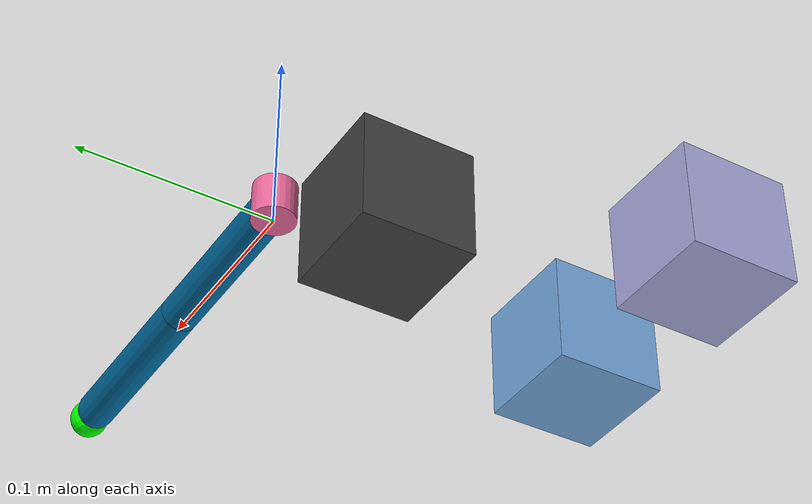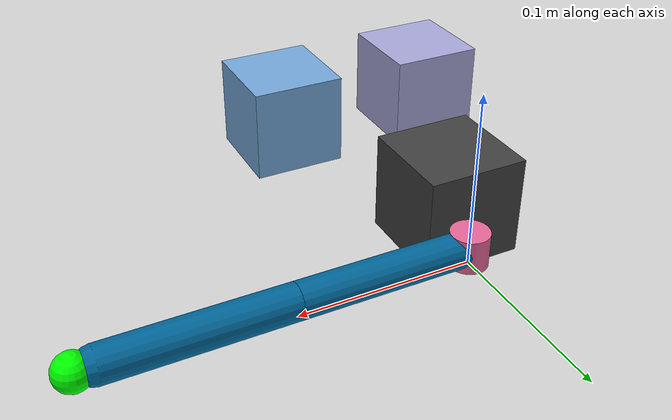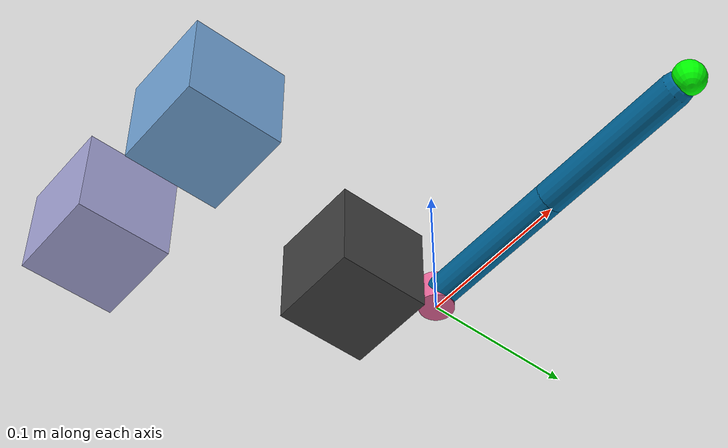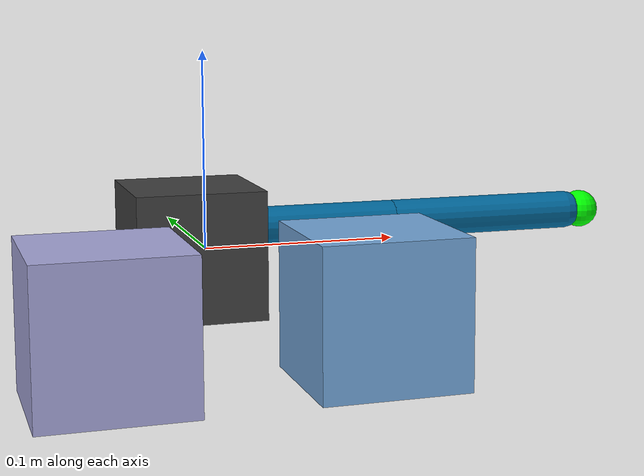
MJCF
<mujoco model="reacher">
	<compiler inertiafromgeom="true" angle="radian"/>
	<default >
		<joint armature="1" damping="1" limited="true"/>
		<geom contype="0" friction="1 0.1 0.1" rgba="0.7 0.7 0 1"/>
	</default>
	<option integrator="RK4" gravity="0 0 -9.81" timestep="0.01"/>
	<worldbody >
		<geom conaffinity="0" name="root" contype="0" fromto="0 0 0 0 0 0.02" rgba="0.9 0.4 0.6 1" type="cylinder" size=".011"/>
		<body name="body0" pos="0 0 .01">
			<geom name="link0" type="capsule" fromto="0 0 0 0.1 0 0" rgba="0.0 0.4 0.6 1.0" size=".01"/>
			<joint limited="true" name="joint0" pos="0 0 0" range="-3.14 3.14" type="hinge" axis="0 0 1"/>
			<body name="body1" pos="0.1 0 0">
				<joint limited="true" name="joint1" pos="0 0 0" range="-3.0 3.0" type="hinge" axis="0 0 1"/>
				<geom name="link1" type="capsule" fromto="0 0 0 0.1 0 0" rgba="0.0 0.4 0.6 1.0" size=".01"/>
				<body name="fingertip" pos="0.11 0 0">
					<site pos="0 0 0" name="fingertip" size="0.01"/>
					<geom name="fingertip" pos="0 0 0" contype="0" rgba="0 1 0 1" type="sphere" size=".01"/>
				</body>
			</body>
		</body>
		<body name="target" pos="-0.0181688740652 -0.0500861280221 0.01">
			<geom conaffinity="0" density="0.00001" contype="0" rgba="0.25 0.25 0.25 1.0" type="box" size="0.03 0.03 0.03"/>
			<site pos="0 0 0" name="target" size="0.01"/>
		</body>
		<body name="cube_0" pos="0.0257076643063 -0.18814992644 0.01">
			<geom conaffinity="0" density="0.00001" contype="0" rgba="0.45 0.65 0.85 1.0" type="box" size="0.03 0.03 0.03"/>
		</body>
		<body name="cube_1" pos="-0.0786855204709 -0.188989827878 0.01">
			<geom conaffinity="0" density="0.00001" contype="0" rgba="0.65 0.65 0.85 1.0" type="box" size="0.03 0.03 0.03"/>
		</body>
	</worldbody>
	<actuator >
		<motor ctrllimited="true" joint="joint0" ctrlrange="-1.0 1.0" gear="200.0"/>
		<motor ctrllimited="true" joint="joint1" ctrlrange="-1.0 1.0" gear="200.0"/>
	</actuator>
</mujoco>
